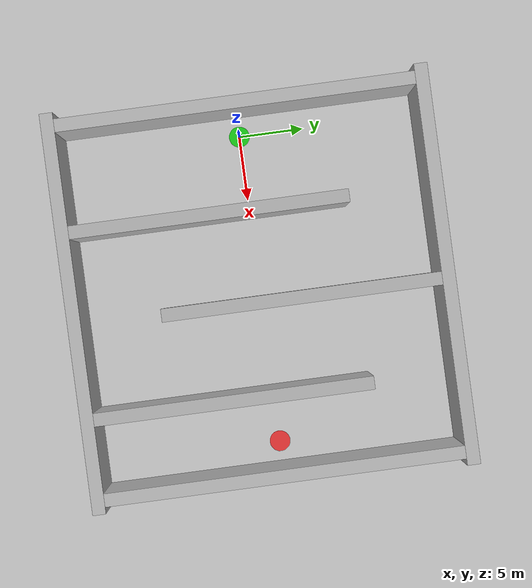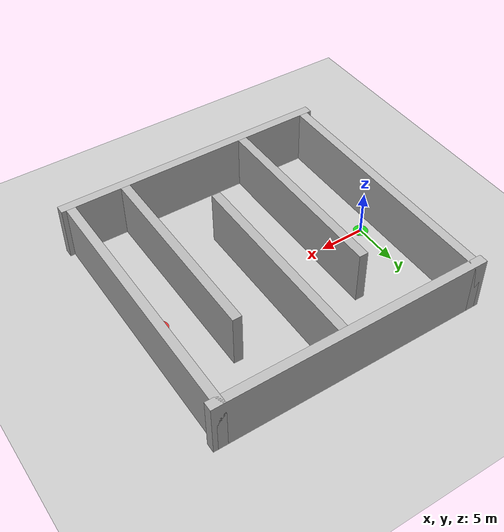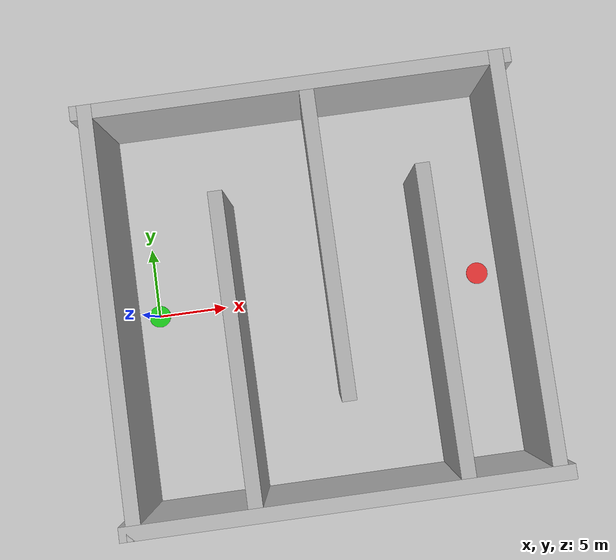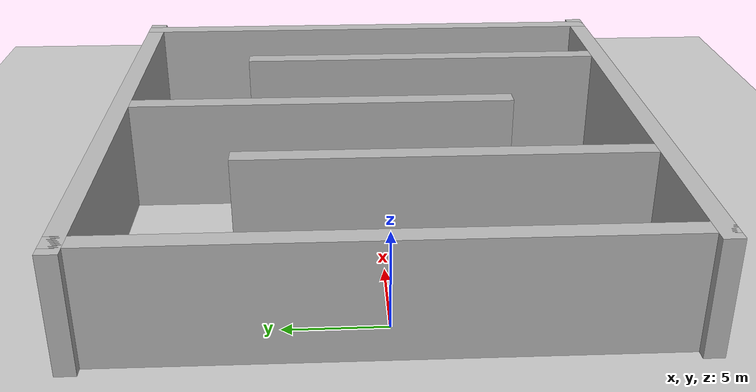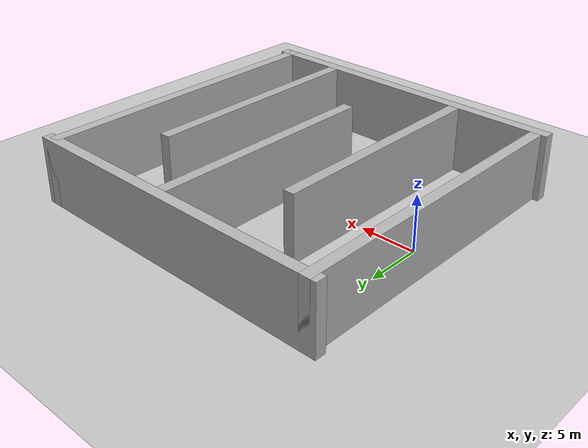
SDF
<?xml version="1.0" encoding="UTF-8"?>
<sdf version="1.9">
  <world name="maze">
    <physics type="ode">
      <max_step_size>0.01</max_step_size>
      <real_time_factor>1.0</real_time_factor>
      <real_time_update_rate>100</real_time_update_rate>
    </physics>
    <gravity>0 0 -9.8</gravity>
    <magnetic_field>6e-06 2.3e-05 -4.2e-05</magnetic_field>
    <atmosphere type="adiabatic"/>

    <scene>
      <grid>false</grid>
      <ambient>0.45 0.45 0.45 1</ambient>
      <background>0.7 0.7 0.7 1</background>
      <shadows>false</shadows>
    </scene>

    <light name="sun" type="directional">
      <pose>0 0 300 0 0 0</pose>
      <cast_shadows>true</cast_shadows>
      <intensity>1.0</intensity>
      <direction>0.2 0.5 -0.84</direction>
      <diffuse>0.9 0.9 0.9 1</diffuse>
      <specular>0.2 0.2 0.2 1</specular>
      <attenuation>
        <range>2000</range>
        <constant>1</constant>
        <linear>0</linear>
        <quadratic>0</quadratic>
      </attenuation>
    </light>

    <spherical_coordinates>
      <surface_model>EARTH_WGS84</surface_model>
      <world_frame_orientation>ENU</world_frame_orientation>
      <latitude_deg>47.397971057728974</latitude_deg>
      <longitude_deg>8.546163739800146</longitude_deg>
      <elevation>0</elevation>
    </spherical_coordinates>

    <model name="ground_plane">
      <static>true</static>
      <link name="link">
        <collision name="collision">
          <geometry>
            <plane>
              <normal>0 0 1</normal>
              <size>120 120</size>
            </plane>
          </geometry>
        </collision>
        <visual name="visual">
          <geometry>
            <plane>
              <normal>0 0 1</normal>
              <size>120 120</size>
            </plane>
          </geometry>
          <material>
            <ambient>0.78 0.78 0.78 1</ambient>
            <diffuse>0.78 0.78 0.78 1</diffuse>
            <specular>0.2 0.2 0.2 1</specular>
          </material>
        </visual>
      </link>
    </model>

    <!-- Start marker (green) at (0,0) -->
    <model name="start_marker">
      <static>true</static>
      <pose>0 0 0.02 0 0 0</pose>
      <link name="link">
        <visual name="visual">
          <geometry>
            <cylinder>
              <radius>0.8</radius>
              <length>0.04</length>
            </cylinder>
          </geometry>
          <material>
            <ambient>0.1 0.8 0.1 1</ambient>
            <diffuse>0.1 0.8 0.1 1</diffuse>
          </material>
        </visual>
      </link>
    </model>

    <!-- Goal marker (red) at (24,0) -->
    <model name="goal_marker">
      <static>true</static>
      <pose>24 0 0.02 0 0 0</pose>
      <link name="link">
        <visual name="visual">
          <geometry>
            <cylinder>
              <radius>0.8</radius>
              <length>0.04</length>
            </cylinder>
          </geometry>
          <material>
            <ambient>0.9 0.2 0.2 1</ambient>
            <diffuse>0.9 0.2 0.2 1</diffuse>
          </material>
        </visual>
      </link>
    </model>

    <!-- Outer boundary -->
    <model name="wall_outer_n">
      <static>true</static>
      <pose>12 14 3 0 0 0</pose>
      <link name="link"><collision name="c"><geometry><box><size>30 1 6</size></box></geometry></collision><visual name="v"><geometry><box><size>30 1 6</size></box></geometry></visual></link>
    </model>
    <model name="wall_outer_s">
      <static>true</static>
      <pose>12 -14 3 0 0 0</pose>
      <link name="link"><collision name="c"><geometry><box><size>30 1 6</size></box></geometry></collision><visual name="v"><geometry><box><size>30 1 6</size></box></geometry></visual></link>
    </model>
    <model name="wall_outer_w">
      <static>true</static>
      <pose>-2 0 3 0 0 0</pose>
      <link name="link"><collision name="c"><geometry><box><size>1 29 6</size></box></geometry></collision><visual name="v"><geometry><box><size>1 29 6</size></box></geometry></visual></link>
    </model>
    <model name="wall_outer_e">
      <static>true</static>
      <pose>26 0 3 0 0 0</pose>
      <link name="link"><collision name="c"><geometry><box><size>1 29 6</size></box></geometry></collision><visual name="v"><geometry><box><size>1 29 6</size></box></geometry></visual></link>
    </model>

    <!-- Interior divider 1 — anchored to south wall, opens north
         Spans y = -13.5 .. +7.5  (length 21 m, centre y = -3.0)
         Gap:  y = +7.5 .. +13.5  (6 m opening in the NORTH half) -->
    <model name="wall_1">
      <static>true</static>
      <pose>6 -3.0 3 0 0 0</pose>
      <link name="link">
        <collision name="c"><geometry><box><size>1 21 6</size></box></geometry></collision>
        <visual name="v"><geometry><box><size>1 21 6</size></box></geometry>
          <material>
            <ambient>0.7 0.7 0.7 1</ambient>
            <diffuse>0.7 0.7 0.7 1</diffuse>
          </material>
        </visual>
      </link>
    </model>

    <!-- Interior divider 2 — anchored to north wall, opens south
         Spans y = -7.5 .. +13.5  (length 21 m, centre y = +3.0)
         Gap:  y = -13.5 .. -7.5  (6 m opening in the SOUTH half) -->
    <model name="wall_2">
      <static>true</static>
      <pose>13 3.0 3 0 0 0</pose>
      <link name="link">
        <collision name="c"><geometry><box><size>1 21 6</size></box></geometry></collision>
        <visual name="v"><geometry><box><size>1 21 6</size></box></geometry>
          <material>
            <ambient>0.7 0.7 0.7 1</ambient>
            <diffuse>0.7 0.7 0.7 1</diffuse>
          </material>
        </visual>
      </link>
    </model>

    <!-- Interior divider 3 — anchored to south wall, opens north
         Spans y = -13.5 .. +7.5  (length 21 m, centre y = -3.0)
         Gap:  y = +7.5 .. +13.5  (6 m opening in the NORTH half) -->
    <model name="wall_3">
      <static>true</static>
      <pose>20 -3.0 3 0 0 0</pose>
      <link name="link">
        <collision name="c"><geometry><box><size>1 21 6</size></box></geometry></collision>
        <visual name="v"><geometry><box><size>1 21 6</size></box></geometry>
          <material>
            <ambient>0.7 0.7 0.7 1</ambient>
            <diffuse>0.7 0.7 0.7 1</diffuse>
          </material>
        </visual>
      </link>
    </model>

  </world>
</sdf>
